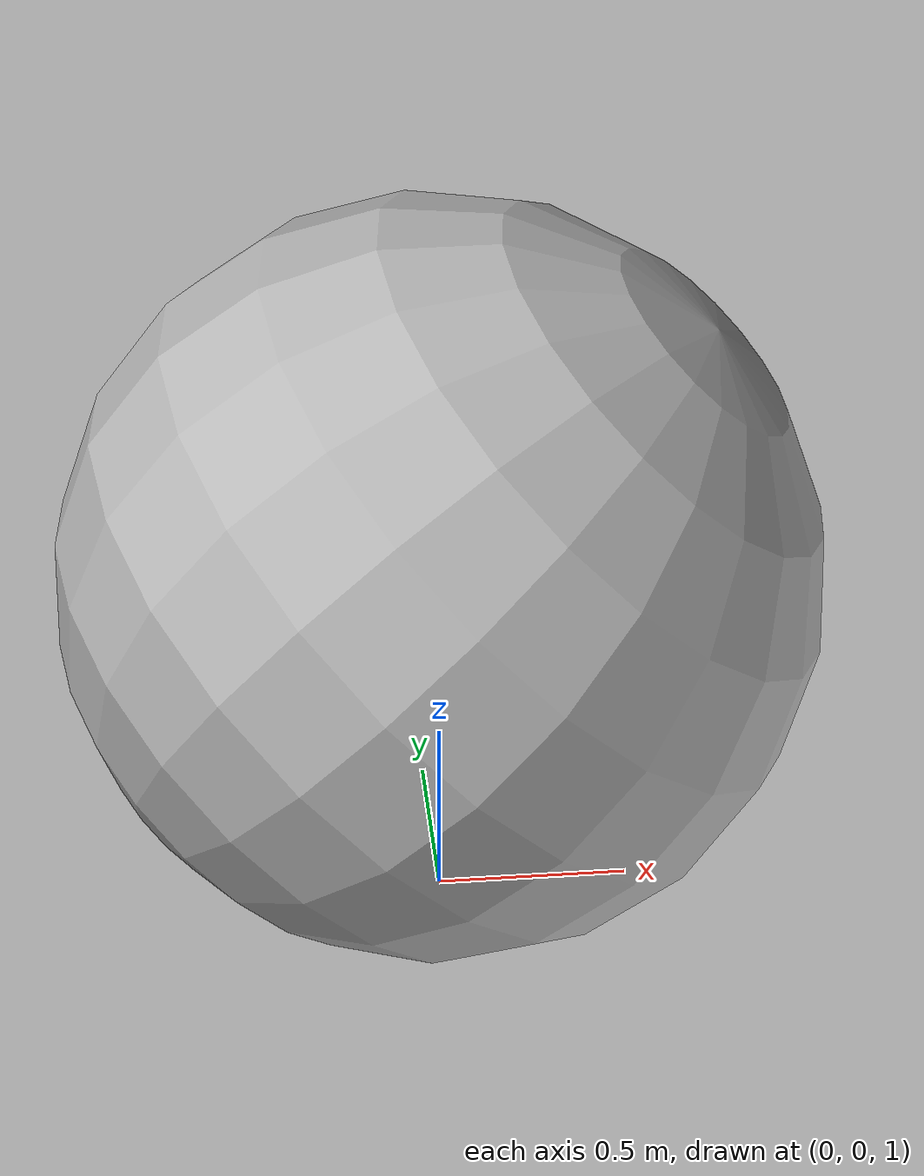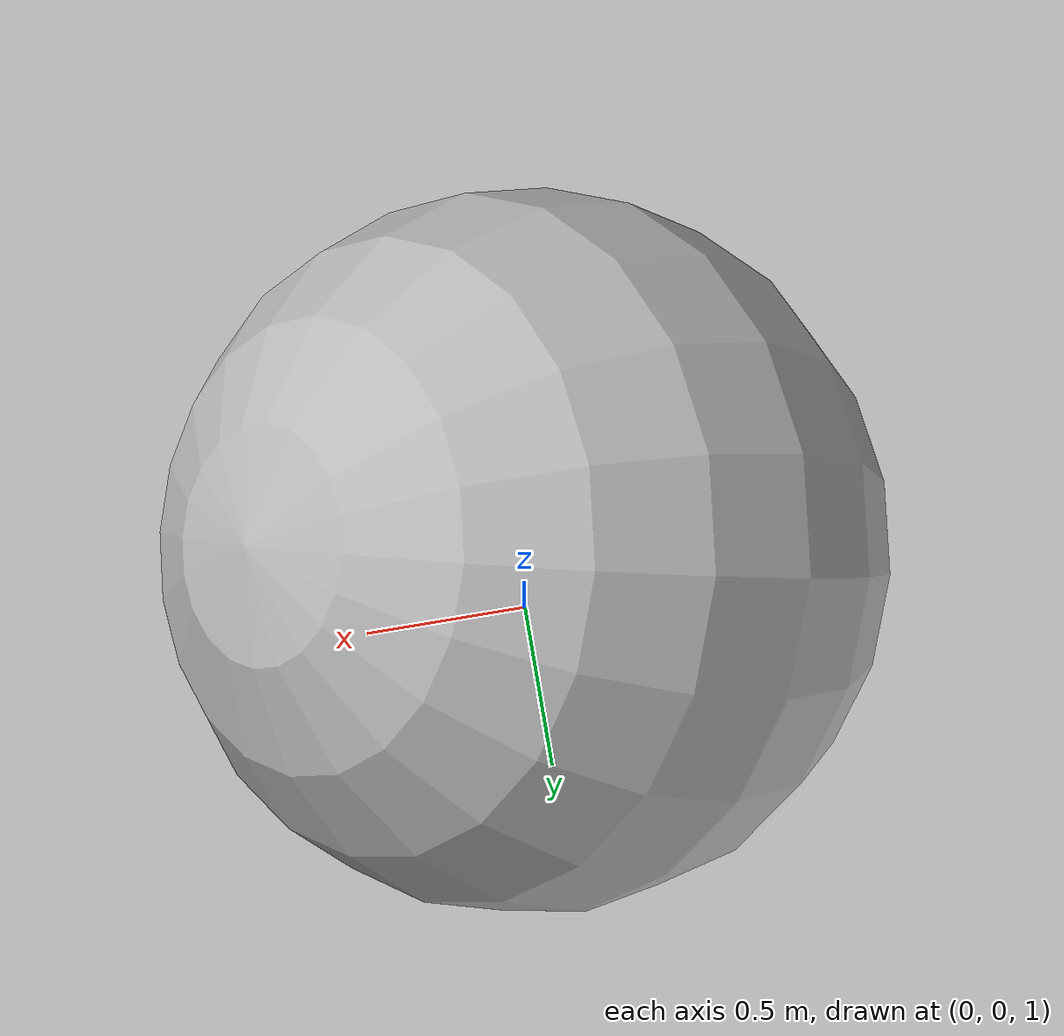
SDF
<?xml version="1.0" ?>
<sdf version="1.6">
  <world name="default">
    <plugin
      filename="gz-sim-physics-system"
      name="gz::sim::systems::v0::Physics">
    </plugin>
    <model name="sphere">
      <pose>0 0 2 0 0.78539816339 0</pose>
      <link name="sphere_link">
        <pose>0.0 0.0 0.0 0 0 0</pose>
        <inertial>
          <inertia>
            <ixx>0.4</ixx>
            <ixy>0</ixy>
            <ixz>0</ixz>
            <iyy>0.4</iyy>
            <iyz>0</iyz>
            <izz>0.4</izz>
          </inertia>
          <fluid_added_mass>
            <xx>0</xx>
            <xy>0</xy>
            <xz>0</xz>
            <xp>0</xp>
            <xq>0</xq>
            <xr>0</xr>
            <yy>0</yy>
            <yz>0</yz>
            <yp>0</yp>
            <yq>0</yq>
            <yr>0</yr>
            <zz>0</zz>
            <zp>0</zp>
            <zq>0</zq>
            <zr>0</zr>
            <pp>0</pp>
            <pq>0</pq>
            <pr>0</pr>
            <qq>0</qq>
            <qr>0</qr>
            <rr>0</rr>
          </fluid_added_mass>
          <mass>1.0</mass>
        </inertial>
        <visual name="sphere_visual">
          <pose>0.0 0.0 0.0 0 0 0</pose>
          <geometry>
            <sphere>
              <radius>1</radius>
            </sphere>
          </geometry>
        </visual>
        <collision name="sphere_collision">
          <pose>0.0 0.0 0.0 0 0 0</pose>
          <geometry>
            <sphere>
              <radius>1</radius>
            </sphere>
          </geometry>
        </collision>
      </link>
    </model>
    <model name="box">
      <static>true</static>
      <pose>0 0 -0.5 0 0 0.78539816339</pose>
      <link name="box_link">
        <inertial>
          <inertia>
            <ixx>1</ixx>
            <ixy>0</ixy>
            <ixz>0</ixz>
            <iyy>1</iyy>
            <iyz>0</iyz>
            <izz>1</izz>
          </inertia>
          <fluid_added_mass>
            <xx>0</xx>
            <xy>0</xy>
            <xz>0</xz>
            <xp>0</xp>
            <xq>0</xq>
            <xr>0</xr>
            <yy>0</yy>
            <yz>0</yz>
            <yp>0</yp>
            <yq>0</yq>
            <yr>0</yr>
            <zz>0</zz>
            <zp>0</zp>
            <zq>0</zq>
            <zr>0</zr>
            <pp>0</pp>
            <pq>0</pq>
            <pr>0</pr>
            <qq>0</qq>
            <qr>0</qr>
            <rr>0</rr>
          </fluid_added_mass>
          <mass>1.0</mass>
        </inertial>
        <pose>0.0 0.0 0.0 0 0 0</pose>
        <collision name="box_collision">
          <geometry>
            <box>
              <size>100 100 1</size>
            </box>
          </geometry>
        </collision>

        <visual name="box_visual">
          <geometry>
            <box>
              <size>100 100 1</size>
            </box>
          </geometry>
        </visual>
      </link>
    </model>
  </world>
</sdf>
